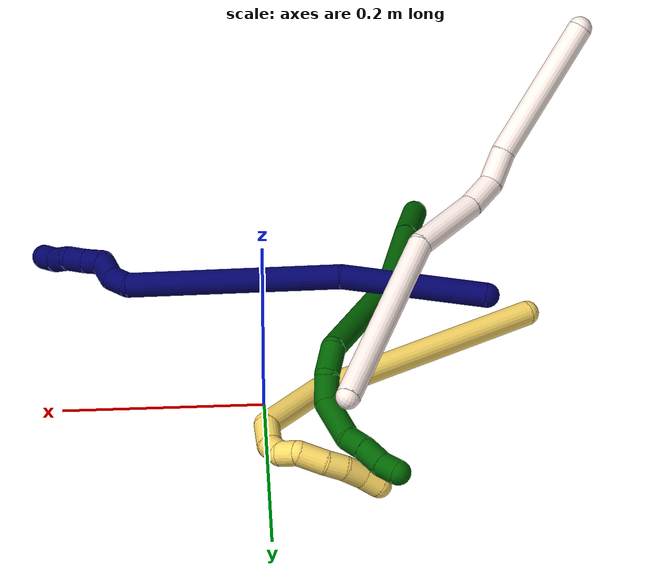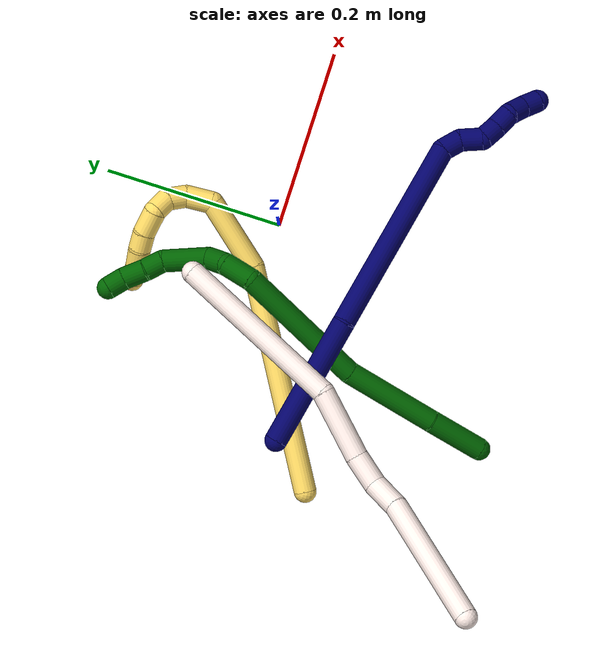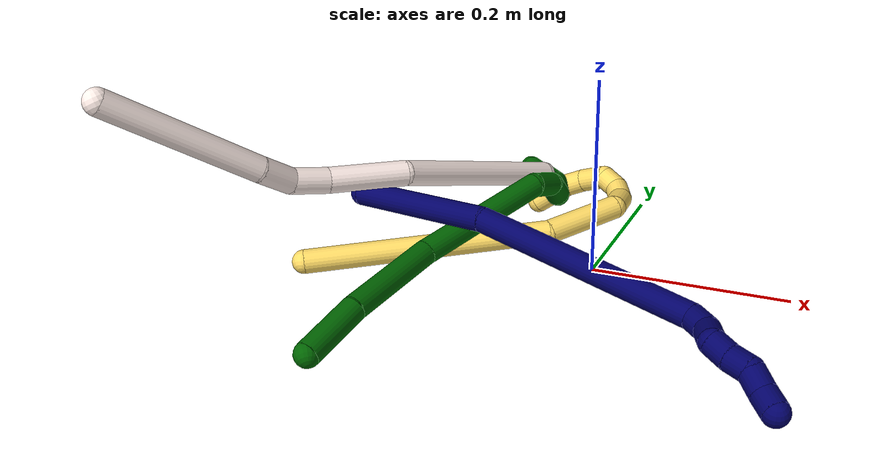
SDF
<sdf version="1.7">
 <world name="default">
  <model name="5">
   <static>0</static>
   <link name="5">
    <collision name="collision-cylinder-e_1_1_4">
     <pose>0.088936 0.084197 0.035632 -1.17045 0.771593 -0.525821</pose>
     <geometry><cylinder><radius>0.0125</radius><length>0.255095</length></cylinder></geometry>
     <surface>
      <friction><ode><mu>1.16</mu><mu2>1.16</mu2><slip1>0</slip1><slip2>0</slip2></ode></friction>
      <contact><ode><kp>1e+06</kp><kd>1</kd><max_vel>0</max_vel><min_depth>0.001</min_depth></ode></contact>
     </surface>
    </collision>
    <visual name="visual-cylinder-e_1_1_4">
     <pose>0.088936 0.084197 0.035632 -1.17045 0.771593 -0.525821</pose>
     <geometry><cylinder><radius>0.0125</radius><length>0.255095</length></cylinder></geometry>
     <material><ambient>1 0.858824 0.4 1</ambient></material>
    </visual>
    <collision name="collision-cylinder-e_2_4_5">
     <pose>0.200073 0.193962 0.095574 -0.810628 0.561661 -0.246282</pose>
     <geometry><cylinder><radius>0.0125</radius><length>0.08337</length></cylinder></geometry>
     <surface>
      <friction><ode><mu>1.16</mu><mu2>1.16</mu2><slip1>0</slip1><slip2>0</slip2></ode></friction>
      <contact><ode><kp>1e+06</kp><kd>1</kd><max_vel>0</max_vel><min_depth>0.001</min_depth></ode></contact>
     </surface>
    </collision>
    <visual name="visual-cylinder-e_2_4_5">
     <pose>0.200073 0.193962 0.095574 -0.810628 0.561661 -0.246282</pose>
     <geometry><cylinder><radius>0.0125</radius><length>0.08337</length></cylinder></geometry>
     <material><ambient>1 0.858824 0.4 1</ambient></material>
    </visual>
    <collision name="collision-cylinder-e_3_5_6">
     <pose>0.219553 0.227338 0.132478 -0.554938 -0.181626 0.051861</pose>
     <geometry><cylinder><radius>0.0125</radius><length>0.03013</length></cylinder></geometry>
     <surface>
      <friction><ode><mu>1.16</mu><mu2>1.16</mu2><slip1>0</slip1><slip2>0</slip2></ode></friction>
      <contact><ode><kp>1e+06</kp><kd>1</kd><max_vel>0</max_vel><min_depth>0.001</min_depth></ode></contact>
     </surface>
    </collision>
    <visual name="visual-cylinder-e_3_5_6">
     <pose>0.219553 0.227338 0.132478 -0.554938 -0.181626 0.051861</pose>
     <geometry><cylinder><radius>0.0125</radius><length>0.03013</length></cylinder></geometry>
     <material><ambient>1 0.858824 0.4 1</ambient></material>
    </visual>
    <collision name="collision-cylinder-e_4_6_7">
     <pose>0.213376 0.235502 0.155118 -0.035499 -0.331168 0.005933</pose>
     <geometry><cylinder><radius>0.0125</radius><length>0.02126</length></cylinder></geometry>
     <surface>
      <friction><ode><mu>1.16</mu><mu2>1.16</mu2><slip1>0</slip1><slip2>0</slip2></ode></friction>
      <contact><ode><kp>1e+06</kp><kd>1</kd><max_vel>0</max_vel><min_depth>0.001</min_depth></ode></contact>
     </surface>
    </collision>
    <visual name="visual-cylinder-e_4_6_7">
     <pose>0.213376 0.235502 0.155118 -0.035499 -0.331168 0.005933</pose>
     <geometry><cylinder><radius>0.0125</radius><length>0.02126</length></cylinder></geometry>
     <material><ambient>1 0.858824 0.4 1</ambient></material>
    </visual>
    <collision name="collision-cylinder-e_5_7_8">
     <pose>0.204532 0.231154 0.172308 0.582393 -0.562036 -0.172601</pose>
     <geometry><cylinder><radius>0.0125</radius><length>0.020219</length></cylinder></geometry>
     <surface>
      <friction><ode><mu>1.16</mu><mu2>1.16</mu2><slip1>0</slip1><slip2>0</slip2></ode></friction>
      <contact><ode><kp>1e+06</kp><kd>1</kd><max_vel>0</max_vel><min_depth>0.001</min_depth></ode></contact>
     </surface>
    </collision>
    <visual name="visual-cylinder-e_5_7_8">
     <pose>0.204532 0.231154 0.172308 0.582393 -0.562036 -0.172601</pose>
     <geometry><cylinder><radius>0.0125</radius><length>0.020219</length></cylinder></geometry>
     <material><ambient>1 0.858824 0.4 1</ambient></material>
    </visual>
    <collision name="collision-cylinder-e_6_8_9">
     <pose>0.185729 0.224232 0.182035 0.709348 -1.32232 -0.561021</pose>
     <geometry><cylinder><radius>0.0125</radius><length>0.027681</length></cylinder></geometry>
     <surface>
      <friction><ode><mu>1.16</mu><mu2>1.16</mu2><slip1>0</slip1><slip2>0</slip2></ode></friction>
      <contact><ode><kp>1e+06</kp><kd>1</kd><max_vel>0</max_vel><min_depth>0.001</min_depth></ode></contact>
     </surface>
    </collision>
    <visual name="visual-cylinder-e_6_8_9">
     <pose>0.185729 0.224232 0.182035 0.709348 -1.32232 -0.561021</pose>
     <geometry><cylinder><radius>0.0125</radius><length>0.027681</length></cylinder></geometry>
     <material><ambient>1 0.858824 0.4 1</ambient></material>
    </visual>
    <collision name="collision-cylinder-e_7_9_10">
     <pose>0.162517 0.219948 0.18453 1.61319 -1.36264 -1.40431</pose>
     <geometry><cylinder><radius>0.0125</radius><length>0.020025</length></cylinder></geometry>
     <surface>
      <friction><ode><mu>1.16</mu><mu2>1.16</mu2><slip1>0</slip1><slip2>0</slip2></ode></friction>
      <contact><ode><kp>1e+06</kp><kd>1</kd><max_vel>0</max_vel><min_depth>0.001</min_depth></ode></contact>
     </surface>
    </collision>
    <visual name="visual-cylinder-e_7_9_10">
     <pose>0.162517 0.219948 0.18453 1.61319 -1.36264 -1.40431</pose>
     <geometry><cylinder><radius>0.0125</radius><length>0.020025</length></cylinder></geometry>
     <material><ambient>1 0.858824 0.4 1</ambient></material>
    </visual>
    <collision name="collision-cylinder-e_8_10_11">
     <pose>0.142014 0.217161 0.182548 2.77868 -1.3838 -2.70573</pose>
     <geometry><cylinder><radius>0.0125</radius><length>0.021793</length></cylinder></geometry>
     <surface>
      <friction><ode><mu>1.16</mu><mu2>1.16</mu2><slip1>0</slip1><slip2>0</slip2></ode></friction>
      <contact><ode><kp>1e+06</kp><kd>1</kd><max_vel>0</max_vel><min_depth>0.001</min_depth></ode></contact>
     </surface>
    </collision>
    <visual name="visual-cylinder-e_8_10_11">
     <pose>0.142014 0.217161 0.182548 2.77868 -1.3838 -2.70573</pose>
     <geometry><cylinder><radius>0.0125</radius><length>0.021793</length></cylinder></geometry>
     <material><ambient>1 0.858824 0.4 1</ambient></material>
    </visual>
    <collision name="collision-cylinder-e_9_11_2">
     <pose>0.12113 0.216596 0.179811 -2.96066 -1.48677 2.94488</pose>
     <geometry><cylinder><radius>0.0125</radius><length>0.020426</length></cylinder></geometry>
     <surface>
      <friction><ode><mu>1.16</mu><mu2>1.16</mu2><slip1>0</slip1><slip2>0</slip2></ode></friction>
      <contact><ode><kp>1e+06</kp><kd>1</kd><max_vel>0</max_vel><min_depth>0.001</min_depth></ode></contact>
     </surface>
    </collision>
    <visual name="visual-cylinder-e_9_11_2">
     <pose>0.12113 0.216596 0.179811 -2.96066 -1.48677 2.94488</pose>
     <geometry><cylinder><radius>0.0125</radius><length>0.020426</length></cylinder></geometry>
     <material><ambient>1 0.858824 0.4 1</ambient></material>
    </visual>
    <collision name="collision-sphere-2">
     <pose>0.110953 0.216751 0.178968 0 -0 0</pose>
     <geometry><sphere><radius>0.0125</radius></sphere></geometry>
     <surface>
      <friction><ode><mu>1.16</mu><mu2>1.16</mu2><slip1>0</slip1><slip2>0</slip2></ode></friction>
      <contact><ode><kp>1e+06</kp><kd>1</kd><max_vel>0</max_vel><min_depth>0.001</min_depth></ode></contact>
     </surface>
    </collision>
    <visual name="visual-sphere-2">
     <pose>0.110953 0.216751 0.178968 0 -0 0</pose>
     <geometry><sphere><radius>0.0125</radius></sphere></geometry>
     <material><ambient>1 0.858824 0.4 1</ambient></material>
    </visual>
    <collision name="collision-sphere-11">
     <pose>0.131308 0.216442 0.180655 0 -0 0</pose>
     <geometry><sphere><radius>0.0125</radius></sphere></geometry>
     <surface>
      <friction><ode><mu>1.16</mu><mu2>1.16</mu2><slip1>0</slip1><slip2>0</slip2></ode></friction>
      <contact><ode><kp>1e+06</kp><kd>1</kd><max_vel>0</max_vel><min_depth>0.001</min_depth></ode></contact>
     </surface>
    </collision>
    <visual name="visual-sphere-11">
     <pose>0.131308 0.216442 0.180655 0 -0 0</pose>
     <geometry><sphere><radius>0.0125</radius></sphere></geometry>
     <material><ambient>1 0.858824 0.4 1</ambient></material>
    </visual>
    <collision name="collision-sphere-10">
     <pose>0.152721 0.21788 0.184442 0 -0 0</pose>
     <geometry><sphere><radius>0.0125</radius></sphere></geometry>
     <surface>
      <friction><ode><mu>1.16</mu><mu2>1.16</mu2><slip1>0</slip1><slip2>0</slip2></ode></friction>
      <contact><ode><kp>1e+06</kp><kd>1</kd><max_vel>0</max_vel><min_depth>0.001</min_depth></ode></contact>
     </surface>
    </collision>
    <visual name="visual-sphere-10">
     <pose>0.152721 0.21788 0.184442 0 -0 0</pose>
     <geometry><sphere><radius>0.0125</radius></sphere></geometry>
     <material><ambient>1 0.858824 0.4 1</ambient></material>
    </visual>
    <collision name="collision-sphere-9">
     <pose>0.172314 0.222015 0.184618 0 -0 0</pose>
     <geometry><sphere><radius>0.0125</radius></sphere></geometry>
     <surface>
      <friction><ode><mu>1.16</mu><mu2>1.16</mu2><slip1>0</slip1><slip2>0</slip2></ode></friction>
      <contact><ode><kp>1e+06</kp><kd>1</kd><max_vel>0</max_vel><min_depth>0.001</min_depth></ode></contact>
     </surface>
    </collision>
    <visual name="visual-sphere-9">
     <pose>0.172314 0.222015 0.184618 0 -0 0</pose>
     <geometry><sphere><radius>0.0125</radius></sphere></geometry>
     <material><ambient>1 0.858824 0.4 1</ambient></material>
    </visual>
    <collision name="collision-sphere-4">
     <pose>0.177872 0.168394 0.071264 0 -0 0</pose>
     <geometry><sphere><radius>0.0125</radius></sphere></geometry>
     <surface>
      <friction><ode><mu>1.16</mu><mu2>1.16</mu2><slip1>0</slip1><slip2>0</slip2></ode></friction>
      <contact><ode><kp>1e+06</kp><kd>1</kd><max_vel>0</max_vel><min_depth>0.001</min_depth></ode></contact>
     </surface>
    </collision>
    <visual name="visual-sphere-4">
     <pose>0.177872 0.168394 0.071264 0 -0 0</pose>
     <geometry><sphere><radius>0.0125</radius></sphere></geometry>
     <material><ambient>1 0.858824 0.4 1</ambient></material>
    </visual>
    <collision name="collision-sphere-1">
     <geometry><sphere><radius>0.0125</radius></sphere></geometry>
     <surface>
      <friction><ode><mu>1.16</mu><mu2>1.16</mu2><slip1>0</slip1><slip2>0</slip2></ode></friction>
      <contact><ode><kp>1e+06</kp><kd>1</kd><max_vel>0</max_vel><min_depth>0.001</min_depth></ode></contact>
     </surface>
    </collision>
    <visual name="visual-sphere-1">
     <geometry><sphere><radius>0.0125</radius></sphere></geometry>
     <material><ambient>1 0.858824 0.4 1</ambient></material>
    </visual>
    <collision name="collision-sphere-8">
     <pose>0.199145 0.226449 0.179452 0 -0 0</pose>
     <geometry><sphere><radius>0.0125</radius></sphere></geometry>
     <surface>
      <friction><ode><mu>1.16</mu><mu2>1.16</mu2><slip1>0</slip1><slip2>0</slip2></ode></friction>
      <contact><ode><kp>1e+06</kp><kd>1</kd><max_vel>0</max_vel><min_depth>0.001</min_depth></ode></contact>
     </surface>
    </collision>
    <visual name="visual-sphere-8">
     <pose>0.199145 0.226449 0.179452 0 -0 0</pose>
     <geometry><sphere><radius>0.0125</radius></sphere></geometry>
     <material><ambient>1 0.858824 0.4 1</ambient></material>
    </visual>
    <collision name="collision-sphere-5">
     <pose>0.222275 0.219531 0.119885 0 -0 0</pose>
     <geometry><sphere><radius>0.0125</radius></sphere></geometry>
     <surface>
      <friction><ode><mu>1.16</mu><mu2>1.16</mu2><slip1>0</slip1><slip2>0</slip2></ode></friction>
      <contact><ode><kp>1e+06</kp><kd>1</kd><max_vel>0</max_vel><min_depth>0.001</min_depth></ode></contact>
     </surface>
    </collision>
    <visual name="visual-sphere-5">
     <pose>0.222275 0.219531 0.119885 0 -0 0</pose>
     <geometry><sphere><radius>0.0125</radius></sphere></geometry>
     <material><ambient>1 0.858824 0.4 1</ambient></material>
    </visual>
    <collision name="collision-sphere-6">
     <pose>0.216832 0.235145 0.145072 0 -0 0</pose>
     <geometry><sphere><radius>0.0125</radius></sphere></geometry>
     <surface>
      <friction><ode><mu>1.16</mu><mu2>1.16</mu2><slip1>0</slip1><slip2>0</slip2></ode></friction>
      <contact><ode><kp>1e+06</kp><kd>1</kd><max_vel>0</max_vel><min_depth>0.001</min_depth></ode></contact>
     </surface>
    </collision>
    <visual name="visual-sphere-6">
     <pose>0.216832 0.235145 0.145072 0 -0 0</pose>
     <geometry><sphere><radius>0.0125</radius></sphere></geometry>
     <material><ambient>1 0.858824 0.4 1</ambient></material>
    </visual>
    <collision name="collision-sphere-7">
     <pose>0.20992 0.235859 0.165164 0 -0 0</pose>
     <geometry><sphere><radius>0.0125</radius></sphere></geometry>
     <surface>
      <friction><ode><mu>1.16</mu><mu2>1.16</mu2><slip1>0</slip1><slip2>0</slip2></ode></friction>
      <contact><ode><kp>1e+06</kp><kd>1</kd><max_vel>0</max_vel><min_depth>0.001</min_depth></ode></contact>
     </surface>
    </collision>
    <visual name="visual-sphere-7">
     <pose>0.20992 0.235859 0.165164 0 -0 0</pose>
     <geometry><sphere><radius>0.0125</radius></sphere></geometry>
     <material><ambient>1 0.858824 0.4 1</ambient></material>
    </visual>
    <inertial>
     <pose>0.137238 0.147895 0.088433 0 -0 0</pose>
     <mass>0.5</mass>
     <inertia>
      <ixx>0.000408</ixx>
      <ixy>0</ixy>
      <ixz>0</ixz>
      <iyy>0.000475</iyy>
      <iyz>0</iyz>
      <izz>-0.001927</izz>
     </inertia>
    </inertial>
   </link>
   <pose>-0.271364 -0.116719 0.011497 -0.94964 -0.576285 -0.122893</pose>
  </model>
  <model name="6">
   <static>0</static>
   <link name="6">
    <collision name="collision-cylinder-e_1_1_4">
     <pose>0.009539 0.022155 0.021513 -0.800082 0.299583 -0.127459</pose>
     <geometry><cylinder><radius>0.0125</radius><length>0.064642</length></cylinder></geometry>
     <surface>
      <friction><ode><mu>1.16</mu><mu2>1.16</mu2><slip1>0</slip1><slip2>0</slip2></ode></friction>
      <contact><ode><kp>1e+06</kp><kd>1</kd><max_vel>0</max_vel><min_depth>0.001</min_depth></ode></contact>
     </surface>
    </collision>
    <visual name="visual-cylinder-e_1_1_4">
     <pose>0.009539 0.022155 0.021513 -0.800082 0.299583 -0.127459</pose>
     <geometry><cylinder><radius>0.0125</radius><length>0.064642</length></cylinder></geometry>
     <material><ambient>0 0.392157 0.003922 1</ambient></material>
    </visual>
    <collision name="collision-cylinder-e_2_4_5">
     <pose>0.030899 0.084822 0.075084 -0.901395 0.224966 -0.109217</pose>
     <geometry><cylinder><radius>0.0125</radius><length>0.105994</length></cylinder></geometry>
     <surface>
      <friction><ode><mu>1.16</mu><mu2>1.16</mu2><slip1>0</slip1><slip2>0</slip2></ode></friction>
      <contact><ode><kp>1e+06</kp><kd>1</kd><max_vel>0</max_vel><min_depth>0.001</min_depth></ode></contact>
     </surface>
    </collision>
    <visual name="visual-cylinder-e_2_4_5">
     <pose>0.030899 0.084822 0.075084 -0.901395 0.224966 -0.109217</pose>
     <geometry><cylinder><radius>0.0125</radius><length>0.105994</length></cylinder></geometry>
     <material><ambient>0 0.392157 0.003922 1</ambient></material>
    </visual>
    <collision name="collision-cylinder-e_3_5_6">
     <pose>0.073526 0.183238 0.143546 -1.00953 0.423165 -0.236247</pose>
     <geometry><cylinder><radius>0.0125</radius><length>0.150029</length></cylinder></geometry>
     <surface>
      <friction><ode><mu>1.16</mu><mu2>1.16</mu2><slip1>0</slip1><slip2>0</slip2></ode></friction>
      <contact><ode><kp>1e+06</kp><kd>1</kd><max_vel>0</max_vel><min_depth>0.001</min_depth></ode></contact>
     </surface>
    </collision>
    <visual name="visual-cylinder-e_3_5_6">
     <pose>0.073526 0.183238 0.143546 -1.00953 0.423165 -0.236247</pose>
     <geometry><cylinder><radius>0.0125</radius><length>0.150029</length></cylinder></geometry>
     <material><ambient>0 0.392157 0.003922 1</ambient></material>
    </visual>
    <collision name="collision-cylinder-e_4_6_7">
     <pose>0.103584 0.257021 0.185875 -1.21371 -0.044033 0.030573</pose>
     <geometry><cylinder><radius>0.0125</radius><length>0.033927</length></cylinder></geometry>
     <surface>
      <friction><ode><mu>1.16</mu><mu2>1.16</mu2><slip1>0</slip1><slip2>0</slip2></ode></friction>
      <contact><ode><kp>1e+06</kp><kd>1</kd><max_vel>0</max_vel><min_depth>0.001</min_depth></ode></contact>
     </surface>
    </collision>
    <visual name="visual-cylinder-e_4_6_7">
     <pose>0.103584 0.257021 0.185875 -1.21371 -0.044033 0.030573</pose>
     <geometry><cylinder><radius>0.0125</radius><length>0.033927</length></cylinder></geometry>
     <material><ambient>0 0.392157 0.003922 1</ambient></material>
    </visual>
    <collision name="collision-cylinder-e_5_7_8">
     <pose>0.096358 0.284814 0.192628 -1.50136 -0.497057 0.464917</pose>
     <geometry><cylinder><radius>0.0125</radius><length>0.027177</length></cylinder></geometry>
     <surface>
      <friction><ode><mu>1.16</mu><mu2>1.16</mu2><slip1>0</slip1><slip2>0</slip2></ode></friction>
      <contact><ode><kp>1e+06</kp><kd>1</kd><max_vel>0</max_vel><min_depth>0.001</min_depth></ode></contact>
     </surface>
    </collision>
    <visual name="visual-cylinder-e_5_7_8">
     <pose>0.096358 0.284814 0.192628 -1.50136 -0.497057 0.464917</pose>
     <geometry><cylinder><radius>0.0125</radius><length>0.027177</length></cylinder></geometry>
     <material><ambient>0 0.392157 0.003922 1</ambient></material>
    </visual>
    <collision name="collision-cylinder-e_6_8_9">
     <pose>0.08055 0.311444 0.212021 -0.670226 -0.375123 0.131997</pose>
     <geometry><cylinder><radius>0.0125</radius><length>0.05092</length></cylinder></geometry>
     <surface>
      <friction><ode><mu>1.16</mu><mu2>1.16</mu2><slip1>0</slip1><slip2>0</slip2></ode></friction>
      <contact><ode><kp>1e+06</kp><kd>1</kd><max_vel>0</max_vel><min_depth>0.001</min_depth></ode></contact>
     </surface>
    </collision>
    <visual name="visual-cylinder-e_6_8_9">
     <pose>0.08055 0.311444 0.212021 -0.670226 -0.375123 0.131997</pose>
     <geometry><cylinder><radius>0.0125</radius><length>0.05092</length></cylinder></geometry>
     <material><ambient>0 0.392157 0.003922 1</ambient></material>
    </visual>
    <collision name="collision-cylinder-e_7_9_10">
     <pose>0.065205 0.328498 0.239262 -0.263365 -0.590106 0.080465</pose>
     <geometry><cylinder><radius>0.0125</radius><length>0.021628</length></cylinder></geometry>
     <surface>
      <friction><ode><mu>1.16</mu><mu2>1.16</mu2><slip1>0</slip1><slip2>0</slip2></ode></friction>
      <contact><ode><kp>1e+06</kp><kd>1</kd><max_vel>0</max_vel><min_depth>0.001</min_depth></ode></contact>
     </surface>
    </collision>
    <visual name="visual-cylinder-e_7_9_10">
     <pose>0.065205 0.328498 0.239262 -0.263365 -0.590106 0.080465</pose>
     <geometry><cylinder><radius>0.0125</radius><length>0.021628</length></cylinder></geometry>
     <material><ambient>0 0.392157 0.003922 1</ambient></material>
    </visual>
    <collision name="collision-cylinder-e_8_10_11">
     <pose>0.051635 0.335376 0.257094 -0.460172 -0.636433 0.154014</pose>
     <geometry><cylinder><radius>0.0125</radius><length>0.025416</length></cylinder></geometry>
     <surface>
      <friction><ode><mu>1.16</mu><mu2>1.16</mu2><slip1>0</slip1><slip2>0</slip2></ode></friction>
      <contact><ode><kp>1e+06</kp><kd>1</kd><max_vel>0</max_vel><min_depth>0.001</min_depth></ode></contact>
     </surface>
    </collision>
    <visual name="visual-cylinder-e_8_10_11">
     <pose>0.051635 0.335376 0.257094 -0.460172 -0.636433 0.154014</pose>
     <geometry><cylinder><radius>0.0125</radius><length>0.025416</length></cylinder></geometry>
     <material><ambient>0 0.392157 0.003922 1</ambient></material>
    </visual>
    <collision name="collision-cylinder-e_9_11_2">
     <pose>0.038406 0.341293 0.274532 -0.164874 -0.594474 0.050607</pose>
     <geometry><cylinder><radius>0.0125</radius><length>0.020269</length></cylinder></geometry>
     <surface>
      <friction><ode><mu>1.16</mu><mu2>1.16</mu2><slip1>0</slip1><slip2>0</slip2></ode></friction>
      <contact><ode><kp>1e+06</kp><kd>1</kd><max_vel>0</max_vel><min_depth>0.001</min_depth></ode></contact>
     </surface>
    </collision>
    <visual name="visual-cylinder-e_9_11_2">
     <pose>0.038406 0.341293 0.274532 -0.164874 -0.594474 0.050607</pose>
     <geometry><cylinder><radius>0.0125</radius><length>0.020269</length></cylinder></geometry>
     <material><ambient>0 0.392157 0.003922 1</ambient></material>
    </visual>
    <collision name="collision-sphere-2">
     <pose>0.03273 0.342671 0.282814 0 -0 0</pose>
     <geometry><sphere><radius>0.0125</radius></sphere></geometry>
     <surface>
      <friction><ode><mu>1.16</mu><mu2>1.16</mu2><slip1>0</slip1><slip2>0</slip2></ode></friction>
      <contact><ode><kp>1e+06</kp><kd>1</kd><max_vel>0</max_vel><min_depth>0.001</min_depth></ode></contact>
     </surface>
    </collision>
    <visual name="visual-sphere-2">
     <pose>0.03273 0.342671 0.282814 0 -0 0</pose>
     <geometry><sphere><radius>0.0125</radius></sphere></geometry>
     <material><ambient>0 0.392157 0.003922 1</ambient></material>
    </visual>
    <collision name="collision-sphere-11">
     <pose>0.044082 0.339915 0.26625 0 -0 0</pose>
     <geometry><sphere><radius>0.0125</radius></sphere></geometry>
     <surface>
      <friction><ode><mu>1.16</mu><mu2>1.16</mu2><slip1>0</slip1><slip2>0</slip2></ode></friction>
      <contact><ode><kp>1e+06</kp><kd>1</kd><max_vel>0</max_vel><min_depth>0.001</min_depth></ode></contact>
     </surface>
    </collision>
    <visual name="visual-sphere-11">
     <pose>0.044082 0.339915 0.26625 0 -0 0</pose>
     <geometry><sphere><radius>0.0125</radius></sphere></geometry>
     <material><ambient>0 0.392157 0.003922 1</ambient></material>
    </visual>
    <collision name="collision-sphere-10">
     <pose>0.059187 0.330837 0.247937 0 -0 0</pose>
     <geometry><sphere><radius>0.0125</radius></sphere></geometry>
     <surface>
      <friction><ode><mu>1.16</mu><mu2>1.16</mu2><slip1>0</slip1><slip2>0</slip2></ode></friction>
      <contact><ode><kp>1e+06</kp><kd>1</kd><max_vel>0</max_vel><min_depth>0.001</min_depth></ode></contact>
     </surface>
    </collision>
    <visual name="visual-sphere-10">
     <pose>0.059187 0.330837 0.247937 0 -0 0</pose>
     <geometry><sphere><radius>0.0125</radius></sphere></geometry>
     <material><ambient>0 0.392157 0.003922 1</ambient></material>
    </visual>
    <collision name="collision-sphere-9">
     <pose>0.071222 0.326159 0.230586 0 -0 0</pose>
     <geometry><sphere><radius>0.0125</radius></sphere></geometry>
     <surface>
      <friction><ode><mu>1.16</mu><mu2>1.16</mu2><slip1>0</slip1><slip2>0</slip2></ode></friction>
      <contact><ode><kp>1e+06</kp><kd>1</kd><max_vel>0</max_vel><min_depth>0.001</min_depth></ode></contact>
     </surface>
    </collision>
    <visual name="visual-sphere-9">
     <pose>0.071222 0.326159 0.230586 0 -0 0</pose>
     <geometry><sphere><radius>0.0125</radius></sphere></geometry>
     <material><ambient>0 0.392157 0.003922 1</ambient></material>
    </visual>
    <collision name="collision-sphere-4">
     <pose>0.019077 0.044309 0.043027 0 -0 0</pose>
     <geometry><sphere><radius>0.0125</radius></sphere></geometry>
     <surface>
      <friction><ode><mu>1.16</mu><mu2>1.16</mu2><slip1>0</slip1><slip2>0</slip2></ode></friction>
      <contact><ode><kp>1e+06</kp><kd>1</kd><max_vel>0</max_vel><min_depth>0.001</min_depth></ode></contact>
     </surface>
    </collision>
    <visual name="visual-sphere-4">
     <pose>0.019077 0.044309 0.043027 0 -0 0</pose>
     <geometry><sphere><radius>0.0125</radius></sphere></geometry>
     <material><ambient>0 0.392157 0.003922 1</ambient></material>
    </visual>
    <collision name="collision-sphere-1">
     <geometry><sphere><radius>0.0125</radius></sphere></geometry>
     <surface>
      <friction><ode><mu>1.16</mu><mu2>1.16</mu2><slip1>0</slip1><slip2>0</slip2></ode></friction>
      <contact><ode><kp>1e+06</kp><kd>1</kd><max_vel>0</max_vel><min_depth>0.001</min_depth></ode></contact>
     </surface>
    </collision>
    <visual name="visual-sphere-1">
     <geometry><sphere><radius>0.0125</radius></sphere></geometry>
     <material><ambient>0 0.392157 0.003922 1</ambient></material>
    </visual>
    <collision name="collision-sphere-8">
     <pose>0.089878 0.296729 0.193456 0 -0 0</pose>
     <geometry><sphere><radius>0.0125</radius></sphere></geometry>
     <surface>
      <friction><ode><mu>1.16</mu><mu2>1.16</mu2><slip1>0</slip1><slip2>0</slip2></ode></friction>
      <contact><ode><kp>1e+06</kp><kd>1</kd><max_vel>0</max_vel><min_depth>0.001</min_depth></ode></contact>
     </surface>
    </collision>
    <visual name="visual-sphere-8">
     <pose>0.089878 0.296729 0.193456 0 -0 0</pose>
     <geometry><sphere><radius>0.0125</radius></sphere></geometry>
     <material><ambient>0 0.392157 0.003922 1</ambient></material>
    </visual>
    <collision name="collision-sphere-5">
     <pose>0.042722 0.125334 0.10714 0 -0 0</pose>
     <geometry><sphere><radius>0.0125</radius></sphere></geometry>
     <surface>
      <friction><ode><mu>1.16</mu><mu2>1.16</mu2><slip1>0</slip1><slip2>0</slip2></ode></friction>
      <contact><ode><kp>1e+06</kp><kd>1</kd><max_vel>0</max_vel><min_depth>0.001</min_depth></ode></contact>
     </surface>
    </collision>
    <visual name="visual-sphere-5">
     <pose>0.042722 0.125334 0.10714 0 -0 0</pose>
     <geometry><sphere><radius>0.0125</radius></sphere></geometry>
     <material><ambient>0 0.392157 0.003922 1</ambient></material>
    </visual>
    <collision name="collision-sphere-6">
     <pose>0.104331 0.241142 0.179952 0 -0 0</pose>
     <geometry><sphere><radius>0.0125</radius></sphere></geometry>
     <surface>
      <friction><ode><mu>1.16</mu><mu2>1.16</mu2><slip1>0</slip1><slip2>0</slip2></ode></friction>
      <contact><ode><kp>1e+06</kp><kd>1</kd><max_vel>0</max_vel><min_depth>0.001</min_depth></ode></contact>
     </surface>
    </collision>
    <visual name="visual-sphere-6">
     <pose>0.104331 0.241142 0.179952 0 -0 0</pose>
     <geometry><sphere><radius>0.0125</radius></sphere></geometry>
     <material><ambient>0 0.392157 0.003922 1</ambient></material>
    </visual>
    <collision name="collision-sphere-7">
     <pose>0.102837 0.272899 0.191799 0 -0 0</pose>
     <geometry><sphere><radius>0.0125</radius></sphere></geometry>
     <surface>
      <friction><ode><mu>1.16</mu><mu2>1.16</mu2><slip1>0</slip1><slip2>0</slip2></ode></friction>
      <contact><ode><kp>1e+06</kp><kd>1</kd><max_vel>0</max_vel><min_depth>0.001</min_depth></ode></contact>
     </surface>
    </collision>
    <visual name="visual-sphere-7">
     <pose>0.102837 0.272899 0.191799 0 -0 0</pose>
     <geometry><sphere><radius>0.0125</radius></sphere></geometry>
     <material><ambient>0 0.392157 0.003922 1</ambient></material>
    </visual>
    <inertial>
     <pose>0.057317 0.185557 0.140991 0 -0 0</pose>
     <mass>0.5</mass>
     <inertia>
      <ixx>0.000332</ixx>
      <ixy>0</ixy>
      <ixz>0</ixz>
      <iyy>0.000229</iyy>
      <iyz>0</iyz>
      <izz>-0.00045</izz>
     </inertia>
    </inertial>
   </link>
   <pose>-0.16816 -0.285307 0.011497 -0.654951 -0.754932 -0.070392</pose>
  </model>
  <model name="7">
   <static>0</static>
   <link name="7">
    <collision name="collision-cylinder-e_1_1_4">
     <pose>0.042384 -0.058658 -0.014348 1.8107 0.611977 0.765318</pose>
     <geometry><cylinder><radius>0.0125</radius><length>0.147554</length></cylinder></geometry>
     <surface>
      <friction><ode><mu>1.16</mu><mu2>1.16</mu2><slip1>0</slip1><slip2>0</slip2></ode></friction>
      <contact><ode><kp>1e+06</kp><kd>1</kd><max_vel>0</max_vel><min_depth>0.001</min_depth></ode></contact>
     </surface>
    </collision>
    <visual name="visual-cylinder-e_1_1_4">
     <pose>0.042384 -0.058658 -0.014348 1.8107 0.611977 0.765318</pose>
     <geometry><cylinder><radius>0.0125</radius><length>0.147554</length></cylinder></geometry>
     <material><ambient>0.003922 0 0.403922 1</ambient></material>
    </visual>
    <collision name="collision-cylinder-e_2_4_5">
     <pose>0.15591 -0.202928 -0.028163 1.56456 0.693339 0.689365</pose>
     <geometry><cylinder><radius>0.0125</radius><length>0.222629</length></cylinder></geometry>
     <surface>
      <friction><ode><mu>1.16</mu><mu2>1.16</mu2><slip1>0</slip1><slip2>0</slip2></ode></friction>
      <contact><ode><kp>1e+06</kp><kd>1</kd><max_vel>0</max_vel><min_depth>0.001</min_depth></ode></contact>
     </surface>
    </collision>
    <visual name="visual-cylinder-e_2_4_5">
     <pose>0.15591 -0.202928 -0.028163 1.56456 0.693339 0.689365</pose>
     <geometry><cylinder><radius>0.0125</radius><length>0.222629</length></cylinder></geometry>
     <material><ambient>0.003922 0 0.403922 1</ambient></material>
    </visual>
    <collision name="collision-cylinder-e_3_5_6">
     <pose>0.237169 -0.292635 -0.029991 2.09382 1.13373 1.6676</pose>
     <geometry><cylinder><radius>0.0125</radius><length>0.022334</length></cylinder></geometry>
     <surface>
      <friction><ode><mu>1.16</mu><mu2>1.16</mu2><slip1>0</slip1><slip2>0</slip2></ode></friction>
      <contact><ode><kp>1e+06</kp><kd>1</kd><max_vel>0</max_vel><min_depth>0.001</min_depth></ode></contact>
     </surface>
    </collision>
    <visual name="visual-cylinder-e_3_5_6">
     <pose>0.237169 -0.292635 -0.029991 2.09382 1.13373 1.6676</pose>
     <geometry><cylinder><radius>0.0125</radius><length>0.022334</length></cylinder></geometry>
     <material><ambient>0.003922 0 0.403922 1</ambient></material>
    </visual>
    <collision name="collision-cylinder-e_4_6_7">
     <pose>0.258492 -0.295796 -0.037713 -2.96901 1.11873 -2.86698</pose>
     <geometry><cylinder><radius>0.0125</radius><length>0.024915</length></cylinder></geometry>
     <surface>
      <friction><ode><mu>1.16</mu><mu2>1.16</mu2><slip1>0</slip1><slip2>0</slip2></ode></friction>
      <contact><ode><kp>1e+06</kp><kd>1</kd><max_vel>0</max_vel><min_depth>0.001</min_depth></ode></contact>
     </surface>
    </collision>
    <visual name="visual-cylinder-e_4_6_7">
     <pose>0.258492 -0.295796 -0.037713 -2.96901 1.11873 -2.86698</pose>
     <geometry><cylinder><radius>0.0125</radius><length>0.024915</length></cylinder></geometry>
     <material><ambient>0.003922 0 0.403922 1</ambient></material>
    </visual>
    <collision name="collision-cylinder-e_5_7_8">
     <pose>0.278611 -0.300222 -0.042886 1.53591 1.02899 0.999362</pose>
     <geometry><cylinder><radius>0.0125</radius><length>0.020805</length></cylinder></geometry>
     <surface>
      <friction><ode><mu>1.16</mu><mu2>1.16</mu2><slip1>0</slip1><slip2>0</slip2></ode></friction>
      <contact><ode><kp>1e+06</kp><kd>1</kd><max_vel>0</max_vel><min_depth>0.001</min_depth></ode></contact>
     </surface>
    </collision>
    <visual name="visual-cylinder-e_5_7_8">
     <pose>0.278611 -0.300222 -0.042886 1.53591 1.02899 0.999362</pose>
     <geometry><cylinder><radius>0.0125</radius><length>0.020805</length></cylinder></geometry>
     <material><ambient>0.003922 0 0.403922 1</ambient></material>
    </visual>
    <collision name="collision-cylinder-e_6_8_9">
     <pose>0.295781 -0.311878 -0.043798 1.74356 0.912251 1.05665</pose>
     <geometry><cylinder><radius>0.0125</radius><length>0.020882</length></cylinder></geometry>
     <surface>
      <friction><ode><mu>1.16</mu><mu2>1.16</mu2><slip1>0</slip1><slip2>0</slip2></ode></friction>
      <contact><ode><kp>1e+06</kp><kd>1</kd><max_vel>0</max_vel><min_depth>0.001</min_depth></ode></contact>
     </surface>
    </collision>
    <visual name="visual-cylinder-e_6_8_9">
     <pose>0.295781 -0.311878 -0.043798 1.74356 0.912251 1.05665</pose>
     <geometry><cylinder><radius>0.0125</radius><length>0.020882</length></cylinder></geometry>
     <material><ambient>0.003922 0 0.403922 1</ambient></material>
    </visual>
    <collision name="collision-cylinder-e_7_9_10">
     <pose>0.313685 -0.321054 -0.042269 0.831644 1.18662 0.578833</pose>
     <geometry><cylinder><radius>0.0125</radius><length>0.020809</length></cylinder></geometry>
     <surface>
      <friction><ode><mu>1.16</mu><mu2>1.16</mu2><slip1>0</slip1><slip2>0</slip2></ode></friction>
      <contact><ode><kp>1e+06</kp><kd>1</kd><max_vel>0</max_vel><min_depth>0.001</min_depth></ode></contact>
     </surface>
    </collision>
    <visual name="visual-cylinder-e_7_9_10">
     <pose>0.313685 -0.321054 -0.042269 0.831644 1.18662 0.578833</pose>
     <geometry><cylinder><radius>0.0125</radius><length>0.020809</length></cylinder></geometry>
     <material><ambient>0.003922 0 0.403922 1</ambient></material>
    </visual>
    <collision name="collision-cylinder-e_8_10_2">
     <pose>0.333083 -0.326306 -0.039502 1.51172 1.33201 1.275</pose>
     <geometry><cylinder><radius>0.0125</radius><length>0.020073</length></cylinder></geometry>
     <surface>
      <friction><ode><mu>1.16</mu><mu2>1.16</mu2><slip1>0</slip1><slip2>0</slip2></ode></friction>
      <contact><ode><kp>1e+06</kp><kd>1</kd><max_vel>0</max_vel><min_depth>0.001</min_depth></ode></contact>
     </surface>
    </collision>
    <visual name="visual-cylinder-e_8_10_2">
     <pose>0.333083 -0.326306 -0.039502 1.51172 1.33201 1.275</pose>
     <geometry><cylinder><radius>0.0125</radius><length>0.020073</length></cylinder></geometry>
     <material><ambient>0.003922 0 0.403922 1</ambient></material>
    </visual>
    <collision name="collision-sphere-2">
     <pose>0.342834 -0.328675 -0.039362 0 -0 0</pose>
     <geometry><sphere><radius>0.0125</radius></sphere></geometry>
     <surface>
      <friction><ode><mu>1.16</mu><mu2>1.16</mu2><slip1>0</slip1><slip2>0</slip2></ode></friction>
      <contact><ode><kp>1e+06</kp><kd>1</kd><max_vel>0</max_vel><min_depth>0.001</min_depth></ode></contact>
     </surface>
    </collision>
    <visual name="visual-sphere-2">
     <pose>0.342834 -0.328675 -0.039362 0 -0 0</pose>
     <geometry><sphere><radius>0.0125</radius></sphere></geometry>
     <material><ambient>0.003922 0 0.403922 1</ambient></material>
    </visual>
    <collision name="collision-sphere-10">
     <pose>0.323331 -0.323936 -0.039642 0 -0 0</pose>
     <geometry><sphere><radius>0.0125</radius></sphere></geometry>
     <surface>
      <friction><ode><mu>1.16</mu><mu2>1.16</mu2><slip1>0</slip1><slip2>0</slip2></ode></friction>
      <contact><ode><kp>1e+06</kp><kd>1</kd><max_vel>0</max_vel><min_depth>0.001</min_depth></ode></contact>
     </surface>
    </collision>
    <visual name="visual-sphere-10">
     <pose>0.323331 -0.323936 -0.039642 0 -0 0</pose>
     <geometry><sphere><radius>0.0125</radius></sphere></geometry>
     <material><ambient>0.003922 0 0.403922 1</ambient></material>
    </visual>
    <collision name="collision-sphere-9">
     <pose>0.304038 -0.318172 -0.044896 0 -0 0</pose>
     <geometry><sphere><radius>0.0125</radius></sphere></geometry>
     <surface>
      <friction><ode><mu>1.16</mu><mu2>1.16</mu2><slip1>0</slip1><slip2>0</slip2></ode></friction>
      <contact><ode><kp>1e+06</kp><kd>1</kd><max_vel>0</max_vel><min_depth>0.001</min_depth></ode></contact>
     </surface>
    </collision>
    <visual name="visual-sphere-9">
     <pose>0.304038 -0.318172 -0.044896 0 -0 0</pose>
     <geometry><sphere><radius>0.0125</radius></sphere></geometry>
     <material><ambient>0.003922 0 0.403922 1</ambient></material>
    </visual>
    <collision name="collision-sphere-4">
     <pose>0.084768 -0.117316 -0.028697 0 -0 0</pose>
     <geometry><sphere><radius>0.0125</radius></sphere></geometry>
     <surface>
      <friction><ode><mu>1.16</mu><mu2>1.16</mu2><slip1>0</slip1><slip2>0</slip2></ode></friction>
      <contact><ode><kp>1e+06</kp><kd>1</kd><max_vel>0</max_vel><min_depth>0.001</min_depth></ode></contact>
     </surface>
    </collision>
    <visual name="visual-sphere-4">
     <pose>0.084768 -0.117316 -0.028697 0 -0 0</pose>
     <geometry><sphere><radius>0.0125</radius></sphere></geometry>
     <material><ambient>0.003922 0 0.403922 1</ambient></material>
    </visual>
    <collision name="collision-sphere-1">
     <geometry><sphere><radius>0.0125</radius></sphere></geometry>
     <surface>
      <friction><ode><mu>1.16</mu><mu2>1.16</mu2><slip1>0</slip1><slip2>0</slip2></ode></friction>
      <contact><ode><kp>1e+06</kp><kd>1</kd><max_vel>0</max_vel><min_depth>0.001</min_depth></ode></contact>
     </surface>
    </collision>
    <visual name="visual-sphere-1">
     <geometry><sphere><radius>0.0125</radius></sphere></geometry>
     <material><ambient>0.003922 0 0.403922 1</ambient></material>
    </visual>
    <collision name="collision-sphere-8">
     <pose>0.287524 -0.305583 -0.042699 0 -0 0</pose>
     <geometry><sphere><radius>0.0125</radius></sphere></geometry>
     <surface>
      <friction><ode><mu>1.16</mu><mu2>1.16</mu2><slip1>0</slip1><slip2>0</slip2></ode></friction>
      <contact><ode><kp>1e+06</kp><kd>1</kd><max_vel>0</max_vel><min_depth>0.001</min_depth></ode></contact>
     </surface>
    </collision>
    <visual name="visual-sphere-8">
     <pose>0.287524 -0.305583 -0.042699 0 -0 0</pose>
     <geometry><sphere><radius>0.0125</radius></sphere></geometry>
     <material><ambient>0.003922 0 0.403922 1</ambient></material>
    </visual>
    <collision name="collision-sphere-5">
     <pose>0.227052 -0.28854 -0.02763 0 -0 0</pose>
     <geometry><sphere><radius>0.0125</radius></sphere></geometry>
     <surface>
      <friction><ode><mu>1.16</mu><mu2>1.16</mu2><slip1>0</slip1><slip2>0</slip2></ode></friction>
      <contact><ode><kp>1e+06</kp><kd>1</kd><max_vel>0</max_vel><min_depth>0.001</min_depth></ode></contact>
     </surface>
    </collision>
    <visual name="visual-sphere-5">
     <pose>0.227052 -0.28854 -0.02763 0 -0 0</pose>
     <geometry><sphere><radius>0.0125</radius></sphere></geometry>
     <material><ambient>0.003922 0 0.403922 1</ambient></material>
    </visual>
    <collision name="collision-sphere-6">
     <pose>0.247287 -0.29673 -0.032352 0 -0 0</pose>
     <geometry><sphere><radius>0.0125</radius></sphere></geometry>
     <surface>
      <friction><ode><mu>1.16</mu><mu2>1.16</mu2><slip1>0</slip1><slip2>0</slip2></ode></friction>
      <contact><ode><kp>1e+06</kp><kd>1</kd><max_vel>0</max_vel><min_depth>0.001</min_depth></ode></contact>
     </surface>
    </collision>
    <visual name="visual-sphere-6">
     <pose>0.247287 -0.29673 -0.032352 0 -0 0</pose>
     <geometry><sphere><radius>0.0125</radius></sphere></geometry>
     <material><ambient>0.003922 0 0.403922 1</ambient></material>
    </visual>
    <collision name="collision-sphere-7">
     <pose>0.269698 -0.294861 -0.043074 0 -0 0</pose>
     <geometry><sphere><radius>0.0125</radius></sphere></geometry>
     <surface>
      <friction><ode><mu>1.16</mu><mu2>1.16</mu2><slip1>0</slip1><slip2>0</slip2></ode></friction>
      <contact><ode><kp>1e+06</kp><kd>1</kd><max_vel>0</max_vel><min_depth>0.001</min_depth></ode></contact>
     </surface>
    </collision>
    <visual name="visual-sphere-7">
     <pose>0.269698 -0.294861 -0.043074 0 -0 0</pose>
     <geometry><sphere><radius>0.0125</radius></sphere></geometry>
     <material><ambient>0.003922 0 0.403922 1</ambient></material>
    </visual>
    <inertial>
     <pose>0.155775 -0.187455 -0.026952 0 -0 0</pose>
     <mass>0.5</mass>
     <inertia>
      <ixx>0.001351</ixx>
      <ixy>0</ixy>
      <ixz>0</ixz>
      <iyy>0.001035</iyy>
      <iyz>0</iyz>
      <izz>0.000172</izz>
     </inertia>
    </inertial>
   </link>
   <pose>-0.225859 -0.069022 0.076245 -3.07441 0.363861 -1.10692</pose>
  </model>
  <model name="11">
   <static>0</static>
   <link name="11">
    <collision name="collision-cylinder-e_1_1_4">
     <pose>0.044026 0.030616 -0.05457 -2.63031 0.613151 -1.76124</pose>
     <geometry><cylinder><radius>0.0125</radius><length>0.153016</length></cylinder></geometry>
     <surface>
      <friction><ode><mu>1.16</mu><mu2>1.16</mu2><slip1>0</slip1><slip2>0</slip2></ode></friction>
      <contact><ode><kp>1e+06</kp><kd>1</kd><max_vel>0</max_vel><min_depth>0.001</min_depth></ode></contact>
     </surface>
    </collision>
    <visual name="visual-cylinder-e_1_1_4">
     <pose>0.044026 0.030616 -0.05457 -2.63031 0.613151 -1.76124</pose>
     <geometry><cylinder><radius>0.0125</radius><length>0.153016</length></cylinder></geometry>
     <material><ambient>1 0.933333 0.909804 1</ambient></material>
    </visual>
    <collision name="collision-cylinder-e_2_4_5">
     <pose>0.09745 0.07138 -0.120581 -2.41604 0.550948 -1.28016</pose>
     <geometry><cylinder><radius>0.0125</radius><length>0.035901</length></cylinder></geometry>
     <surface>
      <friction><ode><mu>1.16</mu><mu2>1.16</mu2><slip1>0</slip1><slip2>0</slip2></ode></friction>
      <contact><ode><kp>1e+06</kp><kd>1</kd><max_vel>0</max_vel><min_depth>0.001</min_depth></ode></contact>
     </surface>
    </collision>
    <visual name="visual-cylinder-e_2_4_5">
     <pose>0.09745 0.07138 -0.120581 -2.41604 0.550948 -1.28016</pose>
     <geometry><cylinder><radius>0.0125</radius><length>0.035901</length></cylinder></geometry>
     <material><ambient>1 0.933333 0.909804 1</ambient></material>
    </visual>
    <collision name="collision-cylinder-e_3_5_6">
     <pose>0.121751 0.088333 -0.139525 -2.40488 0.97398 -1.88186</pose>
     <geometry><cylinder><radius>0.0125</radius><length>0.036039</length></cylinder></geometry>
     <surface>
      <friction><ode><mu>1.16</mu><mu2>1.16</mu2><slip1>0</slip1><slip2>0</slip2></ode></friction>
      <contact><ode><kp>1e+06</kp><kd>1</kd><max_vel>0</max_vel><min_depth>0.001</min_depth></ode></contact>
     </surface>
    </collision>
    <visual name="visual-cylinder-e_3_5_6">
     <pose>0.121751 0.088333 -0.139525 -2.40488 0.97398 -1.88186</pose>
     <geometry><cylinder><radius>0.0125</radius><length>0.036039</length></cylinder></geometry>
     <material><ambient>1 0.933333 0.909804 1</ambient></material>
    </visual>
    <collision name="collision-cylinder-e_4_6_7">
     <pose>0.171423 0.105093 -0.160746 -2.51388 1.11713 -2.18353</pose>
     <geometry><cylinder><radius>0.0125</radius><length>0.07736</length></cylinder></geometry>
     <surface>
      <friction><ode><mu>1.16</mu><mu2>1.16</mu2><slip1>0</slip1><slip2>0</slip2></ode></friction>
      <contact><ode><kp>1e+06</kp><kd>1</kd><max_vel>0</max_vel><min_depth>0.001</min_depth></ode></contact>
     </surface>
    </collision>
    <visual name="visual-cylinder-e_4_6_7">
     <pose>0.171423 0.105093 -0.160746 -2.51388 1.11713 -2.18353</pose>
     <geometry><cylinder><radius>0.0125</radius><length>0.07736</length></cylinder></geometry>
     <material><ambient>1 0.933333 0.909804 1</ambient></material>
    </visual>
    <collision name="collision-cylinder-e_5_7_2">
     <pose>0.275391 0.173685 -0.213745 -2.16102 0.775555 -1.30638</pose>
     <geometry><cylinder><radius>0.0125</radius><length>0.197684</length></cylinder></geometry>
     <surface>
      <friction><ode><mu>1.16</mu><mu2>1.16</mu2><slip1>0</slip1><slip2>0</slip2></ode></friction>
      <contact><ode><kp>1e+06</kp><kd>1</kd><max_vel>0</max_vel><min_depth>0.001</min_depth></ode></contact>
     </surface>
    </collision>
    <visual name="visual-cylinder-e_5_7_2">
     <pose>0.275391 0.173685 -0.213745 -2.16102 0.775555 -1.30638</pose>
     <geometry><cylinder><radius>0.0125</radius><length>0.197684</length></cylinder></geometry>
     <material><ambient>1 0.933333 0.909804 1</ambient></material>
    </visual>
    <collision name="collision-sphere-2">
     <pose>0.344591 0.232321 -0.253024 0 -0 0</pose>
     <geometry><sphere><radius>0.0125</radius></sphere></geometry>
     <surface>
      <friction><ode><mu>1.16</mu><mu2>1.16</mu2><slip1>0</slip1><slip2>0</slip2></ode></friction>
      <contact><ode><kp>1e+06</kp><kd>1</kd><max_vel>0</max_vel><min_depth>0.001</min_depth></ode></contact>
     </surface>
    </collision>
    <visual name="visual-sphere-2">
     <pose>0.344591 0.232321 -0.253024 0 -0 0</pose>
     <geometry><sphere><radius>0.0125</radius></sphere></geometry>
     <material><ambient>1 0.933333 0.909804 1</ambient></material>
    </visual>
    <collision name="collision-sphere-7">
     <pose>0.20619 0.115049 -0.174466 0 -0 0</pose>
     <geometry><sphere><radius>0.0125</radius></sphere></geometry>
     <surface>
      <friction><ode><mu>1.16</mu><mu2>1.16</mu2><slip1>0</slip1><slip2>0</slip2></ode></friction>
      <contact><ode><kp>1e+06</kp><kd>1</kd><max_vel>0</max_vel><min_depth>0.001</min_depth></ode></contact>
     </surface>
    </collision>
    <visual name="visual-sphere-7">
     <pose>0.20619 0.115049 -0.174466 0 -0 0</pose>
     <geometry><sphere><radius>0.0125</radius></sphere></geometry>
     <material><ambient>1 0.933333 0.909804 1</ambient></material>
    </visual>
    <collision name="collision-sphere-6">
     <pose>0.136656 0.095137 -0.147026 0 -0 0</pose>
     <geometry><sphere><radius>0.0125</radius></sphere></geometry>
     <surface>
      <friction><ode><mu>1.16</mu><mu2>1.16</mu2><slip1>0</slip1><slip2>0</slip2></ode></friction>
      <contact><ode><kp>1e+06</kp><kd>1</kd><max_vel>0</max_vel><min_depth>0.001</min_depth></ode></contact>
     </surface>
    </collision>
    <visual name="visual-sphere-6">
     <pose>0.136656 0.095137 -0.147026 0 -0 0</pose>
     <geometry><sphere><radius>0.0125</radius></sphere></geometry>
     <material><ambient>1 0.933333 0.909804 1</ambient></material>
    </visual>
    <collision name="collision-sphere-5">
     <pose>0.106847 0.081529 -0.132024 0 -0 0</pose>
     <geometry><sphere><radius>0.0125</radius></sphere></geometry>
     <surface>
      <friction><ode><mu>1.16</mu><mu2>1.16</mu2><slip1>0</slip1><slip2>0</slip2></ode></friction>
      <contact><ode><kp>1e+06</kp><kd>1</kd><max_vel>0</max_vel><min_depth>0.001</min_depth></ode></contact>
     </surface>
    </collision>
    <visual name="visual-sphere-5">
     <pose>0.106847 0.081529 -0.132024 0 -0 0</pose>
     <geometry><sphere><radius>0.0125</radius></sphere></geometry>
     <material><ambient>1 0.933333 0.909804 1</ambient></material>
    </visual>
    <collision name="collision-sphere-1">
     <geometry><sphere><radius>0.0125</radius></sphere></geometry>
     <surface>
      <friction><ode><mu>1.16</mu><mu2>1.16</mu2><slip1>0</slip1><slip2>0</slip2></ode></friction>
      <contact><ode><kp>1e+06</kp><kd>1</kd><max_vel>0</max_vel><min_depth>0.001</min_depth></ode></contact>
     </surface>
    </collision>
    <visual name="visual-sphere-1">
     <geometry><sphere><radius>0.0125</radius></sphere></geometry>
     <material><ambient>1 0.933333 0.909804 1</ambient></material>
    </visual>
    <collision name="collision-sphere-4">
     <pose>0.088053 0.061232 -0.109139 0 -0 0</pose>
     <geometry><sphere><radius>0.0125</radius></sphere></geometry>
     <surface>
      <friction><ode><mu>1.16</mu><mu2>1.16</mu2><slip1>0</slip1><slip2>0</slip2></ode></friction>
      <contact><ode><kp>1e+06</kp><kd>1</kd><max_vel>0</max_vel><min_depth>0.001</min_depth></ode></contact>
     </surface>
    </collision>
    <visual name="visual-sphere-4">
     <pose>0.088053 0.061232 -0.109139 0 -0 0</pose>
     <geometry><sphere><radius>0.0125</radius></sphere></geometry>
     <material><ambient>1 0.933333 0.909804 1</ambient></material>
    </visual>
    <inertial>
     <pose>0.164649 0.105791 -0.144793 0 -0 0</pose>
     <mass>0.5</mass>
     <inertia>
      <ixx>-0.000624</ixx>
      <ixy>0</ixy>
      <ixz>0</ixz>
      <iyy>-0.00025</iyy>
      <iyz>0</iyz>
      <izz>-0.00122</izz>
     </inertia>
    </inertial>
   </link>
   <pose>-0.33546 -0.312011 0.224271 -0.261065 -0.382422 0.631667</pose>
  </model>
 </world>
</sdf>
